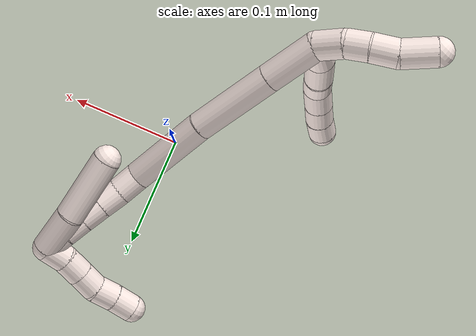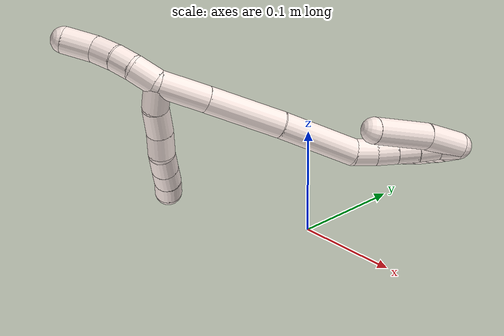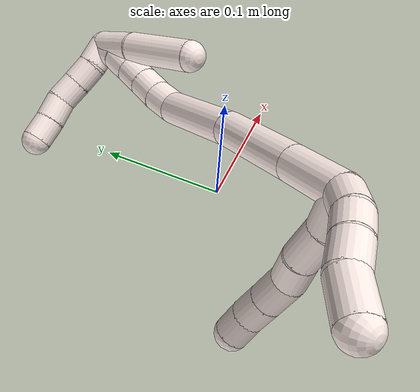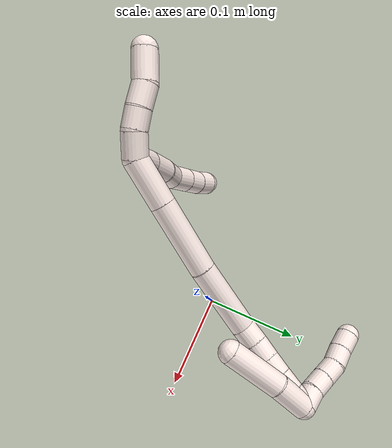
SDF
<sdf version="1.7">
 <world name="default">
  <model name="11">
   <static>0</static>
   <link name="11">
    <collision name="collision-cylinder-e_1_2_8">
     <pose>-0.013148 -0.002864 -0.005314 2.64728 -1.1404 -2.39186</pose>
     <geometry><cylinder><radius>0.0125</radius><length>0.028936</length></cylinder></geometry>
     <surface>
      <friction><ode><mu>1.16</mu><mu2>1.16</mu2><slip1>0</slip1><slip2>0</slip2></ode></friction>
      <contact><ode><kp>1e+06</kp><kd>1</kd><max_vel>0</max_vel><min_depth>0.001</min_depth></ode></contact>
     </surface>
    </collision>
    <visual name="visual-cylinder-e_1_2_8">
     <pose>-0.013148 -0.002864 -0.005314 2.64728 -1.1404 -2.39186</pose>
     <geometry><cylinder><radius>0.0125</radius><length>0.028936</length></cylinder></geometry>
     <material><ambient>1 0.933333 0.909804 1</ambient></material>
    </visual>
    <collision name="collision-cylinder-e_2_8_9">
     <pose>-0.039009 -0.008166 -0.019204 2.86464 -0.959155 -2.61794</pose>
     <geometry><cylinder><radius>0.0125</radius><length>0.031055</length></cylinder></geometry>
     <surface>
      <friction><ode><mu>1.16</mu><mu2>1.16</mu2><slip1>0</slip1><slip2>0</slip2></ode></friction>
      <contact><ode><kp>1e+06</kp><kd>1</kd><max_vel>0</max_vel><min_depth>0.001</min_depth></ode></contact>
     </surface>
    </collision>
    <visual name="visual-cylinder-e_2_8_9">
     <pose>-0.039009 -0.008166 -0.019204 2.86464 -0.959155 -2.61794</pose>
     <geometry><cylinder><radius>0.0125</radius><length>0.031055</length></cylinder></geometry>
     <material><ambient>1 0.933333 0.909804 1</ambient></material>
    </visual>
    <collision name="collision-cylinder-e_3_9_10">
     <pose>-0.061872 -0.01428 -0.03355 2.57425 -0.977741 -2.1389</pose>
     <geometry><cylinder><radius>0.0125</radius><length>0.02448</length></cylinder></geometry>
     <surface>
      <friction><ode><mu>1.16</mu><mu2>1.16</mu2><slip1>0</slip1><slip2>0</slip2></ode></friction>
      <contact><ode><kp>1e+06</kp><kd>1</kd><max_vel>0</max_vel><min_depth>0.001</min_depth></ode></contact>
     </surface>
    </collision>
    <visual name="visual-cylinder-e_3_9_10">
     <pose>-0.061872 -0.01428 -0.03355 2.57425 -0.977741 -2.1389</pose>
     <geometry><cylinder><radius>0.0125</radius><length>0.02448</length></cylinder></geometry>
     <material><ambient>1 0.933333 0.909804 1</ambient></material>
    </visual>
    <collision name="collision-cylinder-e_4_10_11">
     <pose>-0.082232 -0.017599 -0.046178 -3.08956 -0.978652 3.04394</pose>
     <geometry><cylinder><radius>0.0125</radius><length>0.024611</length></cylinder></geometry>
     <surface>
      <friction><ode><mu>1.16</mu><mu2>1.16</mu2><slip1>0</slip1><slip2>0</slip2></ode></friction>
      <contact><ode><kp>1e+06</kp><kd>1</kd><max_vel>0</max_vel><min_depth>0.001</min_depth></ode></contact>
     </surface>
    </collision>
    <visual name="visual-cylinder-e_4_10_11">
     <pose>-0.082232 -0.017599 -0.046178 -3.08956 -0.978652 3.04394</pose>
     <geometry><cylinder><radius>0.0125</radius><length>0.024611</length></cylinder></geometry>
     <material><ambient>1 0.933333 0.909804 1</ambient></material>
    </visual>
    <collision name="collision-cylinder-e_5_11_12">
     <pose>-0.101006 -0.016866 -0.05892 -3.07777 -0.967882 3.02029</pose>
     <geometry><cylinder><radius>0.0125</radius><length>0.020791</length></cylinder></geometry>
     <surface>
      <friction><ode><mu>1.16</mu><mu2>1.16</mu2><slip1>0</slip1><slip2>0</slip2></ode></friction>
      <contact><ode><kp>1e+06</kp><kd>1</kd><max_vel>0</max_vel><min_depth>0.001</min_depth></ode></contact>
     </surface>
    </collision>
    <visual name="visual-cylinder-e_5_11_12">
     <pose>-0.101006 -0.016866 -0.05892 -3.07777 -0.967882 3.02029</pose>
     <geometry><cylinder><radius>0.0125</radius><length>0.020791</length></cylinder></geometry>
     <material><ambient>1 0.933333 0.909804 1</ambient></material>
    </visual>
    <collision name="collision-cylinder-e_6_12_6">
     <pose>-0.1183 -0.015762 -0.069753 -2.99556 -1.05045 2.89047</pose>
     <geometry><cylinder><radius>0.0125</radius><length>0.020126</length></cylinder></geometry>
     <surface>
      <friction><ode><mu>1.16</mu><mu2>1.16</mu2><slip1>0</slip1><slip2>0</slip2></ode></friction>
      <contact><ode><kp>1e+06</kp><kd>1</kd><max_vel>0</max_vel><min_depth>0.001</min_depth></ode></contact>
     </surface>
    </collision>
    <visual name="visual-cylinder-e_6_12_6">
     <pose>-0.1183 -0.015762 -0.069753 -2.99556 -1.05045 2.89047</pose>
     <geometry><cylinder><radius>0.0125</radius><length>0.020126</length></cylinder></geometry>
     <material><ambient>1 0.933333 0.909804 1</ambient></material>
    </visual>
    <collision name="collision-cylinder-e_1_2_13">
     <pose>-0.002405 0.007447 0.010081 -0.63624 -0.189579 0.062596</pose>
     <geometry><cylinder><radius>0.0125</radius><length>0.025523</length></cylinder></geometry>
     <surface>
      <friction><ode><mu>1.16</mu><mu2>1.16</mu2><slip1>0</slip1><slip2>0</slip2></ode></friction>
      <contact><ode><kp>1e+06</kp><kd>1</kd><max_vel>0</max_vel><min_depth>0.001</min_depth></ode></contact>
     </surface>
    </collision>
    <visual name="visual-cylinder-e_1_2_13">
     <pose>-0.002405 0.007447 0.010081 -0.63624 -0.189579 0.062596</pose>
     <geometry><cylinder><radius>0.0125</radius><length>0.025523</length></cylinder></geometry>
     <material><ambient>1 0.933333 0.909804 1</ambient></material>
    </visual>
    <collision name="collision-cylinder-e_2_13_14">
     <pose>-0.008908 0.021617 0.026519 -0.813328 -0.416931 0.181705</pose>
     <geometry><cylinder><radius>0.0125</radius><length>0.020242</length></cylinder></geometry>
     <surface>
      <friction><ode><mu>1.16</mu><mu2>1.16</mu2><slip1>0</slip1><slip2>0</slip2></ode></friction>
      <contact><ode><kp>1e+06</kp><kd>1</kd><max_vel>0</max_vel><min_depth>0.001</min_depth></ode></contact>
     </surface>
    </collision>
    <visual name="visual-cylinder-e_2_13_14">
     <pose>-0.008908 0.021617 0.026519 -0.813328 -0.416931 0.181705</pose>
     <geometry><cylinder><radius>0.0125</radius><length>0.020242</length></cylinder></geometry>
     <material><ambient>1 0.933333 0.909804 1</ambient></material>
    </visual>
    <collision name="collision-cylinder-e_3_14_15">
     <pose>-0.019056 0.035721 0.039387 -0.848037 -0.551117 0.253896</pose>
     <geometry><cylinder><radius>0.0125</radius><length>0.023103</length></cylinder></geometry>
     <surface>
      <friction><ode><mu>1.16</mu><mu2>1.16</mu2><slip1>0</slip1><slip2>0</slip2></ode></friction>
      <contact><ode><kp>1e+06</kp><kd>1</kd><max_vel>0</max_vel><min_depth>0.001</min_depth></ode></contact>
     </surface>
    </collision>
    <visual name="visual-cylinder-e_3_14_15">
     <pose>-0.019056 0.035721 0.039387 -0.848037 -0.551117 0.253896</pose>
     <geometry><cylinder><radius>0.0125</radius><length>0.023103</length></cylinder></geometry>
     <material><ambient>1 0.933333 0.909804 1</ambient></material>
    </visual>
    <collision name="collision-cylinder-e_4_15_5">
     <pose>-0.032341 0.050242 0.057685 -0.544594 -0.483502 0.137486</pose>
     <geometry><cylinder><radius>0.0125</radius><length>0.031132</length></cylinder></geometry>
     <surface>
      <friction><ode><mu>1.16</mu><mu2>1.16</mu2><slip1>0</slip1><slip2>0</slip2></ode></friction>
      <contact><ode><kp>1e+06</kp><kd>1</kd><max_vel>0</max_vel><min_depth>0.001</min_depth></ode></contact>
     </surface>
    </collision>
    <visual name="visual-cylinder-e_4_15_5">
     <pose>-0.032341 0.050242 0.057685 -0.544594 -0.483502 0.137486</pose>
     <geometry><cylinder><radius>0.0125</radius><length>0.031132</length></cylinder></geometry>
     <material><ambient>1 0.933333 0.909804 1</ambient></material>
    </visual>
    <collision name="collision-cylinder-e_1_2_16">
     <pose>0.001243 -0.003356 -0.023659 3.00069 0.051952 0.705558</pose>
     <geometry><cylinder><radius>0.0125</radius><length>0.047857</length></cylinder></geometry>
     <surface>
      <friction><ode><mu>1.16</mu><mu2>1.16</mu2><slip1>0</slip1><slip2>0</slip2></ode></friction>
      <contact><ode><kp>1e+06</kp><kd>1</kd><max_vel>0</max_vel><min_depth>0.001</min_depth></ode></contact>
     </surface>
    </collision>
    <visual name="visual-cylinder-e_1_2_16">
     <pose>0.001243 -0.003356 -0.023659 3.00069 0.051952 0.705558</pose>
     <geometry><cylinder><radius>0.0125</radius><length>0.047857</length></cylinder></geometry>
     <material><ambient>1 0.933333 0.909804 1</ambient></material>
    </visual>
    <collision name="collision-cylinder-e_2_16_17">
     <pose>0.003851 -0.012035 -0.084178 2.99818 0.036655 0.499691</pose>
     <geometry><cylinder><radius>0.0125</radius><length>0.074533</length></cylinder></geometry>
     <surface>
      <friction><ode><mu>1.16</mu><mu2>1.16</mu2><slip1>0</slip1><slip2>0</slip2></ode></friction>
      <contact><ode><kp>1e+06</kp><kd>1</kd><max_vel>0</max_vel><min_depth>0.001</min_depth></ode></contact>
     </surface>
    </collision>
    <visual name="visual-cylinder-e_2_16_17">
     <pose>0.003851 -0.012035 -0.084178 2.99818 0.036655 0.499691</pose>
     <geometry><cylinder><radius>0.0125</radius><length>0.074533</length></cylinder></geometry>
     <material><ambient>1 0.933333 0.909804 1</ambient></material>
    </visual>
    <collision name="collision-cylinder-e_3_17_18">
     <pose>0.003787 -0.021797 -0.158786 3.02451 -0.037582 -0.620619</pose>
     <geometry><cylinder><radius>0.0125</radius><length>0.076073</length></cylinder></geometry>
     <surface>
      <friction><ode><mu>1.16</mu><mu2>1.16</mu2><slip1>0</slip1><slip2>0</slip2></ode></friction>
      <contact><ode><kp>1e+06</kp><kd>1</kd><max_vel>0</max_vel><min_depth>0.001</min_depth></ode></contact>
     </surface>
    </collision>
    <visual name="visual-cylinder-e_3_17_18">
     <pose>0.003787 -0.021797 -0.158786 3.02451 -0.037582 -0.620619</pose>
     <geometry><cylinder><radius>0.0125</radius><length>0.076073</length></cylinder></geometry>
     <material><ambient>1 0.933333 0.909804 1</ambient></material>
    </visual>
    <collision name="collision-cylinder-e_4_18_19">
     <pose>0.004836 -0.025259 -0.206778 -3.04638 0.236297 -2.37826</pose>
     <geometry><cylinder><radius>0.0125</radius><length>0.021167</length></cylinder></geometry>
     <surface>
      <friction><ode><mu>1.16</mu><mu2>1.16</mu2><slip1>0</slip1><slip2>0</slip2></ode></friction>
      <contact><ode><kp>1e+06</kp><kd>1</kd><max_vel>0</max_vel><min_depth>0.001</min_depth></ode></contact>
     </surface>
    </collision>
    <visual name="visual-cylinder-e_4_18_19">
     <pose>0.004836 -0.025259 -0.206778 -3.04638 0.236297 -2.37826</pose>
     <geometry><cylinder><radius>0.0125</radius><length>0.021167</length></cylinder></geometry>
     <material><ambient>1 0.933333 0.909804 1</ambient></material>
    </visual>
    <collision name="collision-cylinder-e_5_19_20">
     <pose>0.010764 -0.023284 -0.226456 -3.03629 0.348827 -2.56035</pose>
     <geometry><cylinder><radius>0.0125</radius><length>0.020192</length></cylinder></geometry>
     <surface>
      <friction><ode><mu>1.16</mu><mu2>1.16</mu2><slip1>0</slip1><slip2>0</slip2></ode></friction>
      <contact><ode><kp>1e+06</kp><kd>1</kd><max_vel>0</max_vel><min_depth>0.001</min_depth></ode></contact>
     </surface>
    </collision>
    <visual name="visual-cylinder-e_5_19_20">
     <pose>0.010764 -0.023284 -0.226456 -3.03629 0.348827 -2.56035</pose>
     <geometry><cylinder><radius>0.0125</radius><length>0.020192</length></cylinder></geometry>
     <material><ambient>1 0.933333 0.909804 1</ambient></material>
    </visual>
    <collision name="collision-cylinder-e_6_20_21">
     <pose>0.017627 -0.021146 -0.245296 -3.02094 0.345655 -2.47539</pose>
     <geometry><cylinder><radius>0.0125</radius><length>0.020138</length></cylinder></geometry>
     <surface>
      <friction><ode><mu>1.16</mu><mu2>1.16</mu2><slip1>0</slip1><slip2>0</slip2></ode></friction>
      <contact><ode><kp>1e+06</kp><kd>1</kd><max_vel>0</max_vel><min_depth>0.001</min_depth></ode></contact>
     </surface>
    </collision>
    <visual name="visual-cylinder-e_6_20_21">
     <pose>0.017627 -0.021146 -0.245296 -3.02094 0.345655 -2.47539</pose>
     <geometry><cylinder><radius>0.0125</radius><length>0.020138</length></cylinder></geometry>
     <material><ambient>1 0.933333 0.909804 1</ambient></material>
    </visual>
    <collision name="collision-cylinder-e_7_21_22">
     <pose>0.024654 -0.01844 -0.263898 -2.97294 0.36974 -2.29256</pose>
     <geometry><cylinder><radius>0.0125</radius><length>0.020012</length></cylinder></geometry>
     <surface>
      <friction><ode><mu>1.16</mu><mu2>1.16</mu2><slip1>0</slip1><slip2>0</slip2></ode></friction>
      <contact><ode><kp>1e+06</kp><kd>1</kd><max_vel>0</max_vel><min_depth>0.001</min_depth></ode></contact>
     </surface>
    </collision>
    <visual name="visual-cylinder-e_7_21_22">
     <pose>0.024654 -0.01844 -0.263898 -2.97294 0.36974 -2.29256</pose>
     <geometry><cylinder><radius>0.0125</radius><length>0.020012</length></cylinder></geometry>
     <material><ambient>1 0.933333 0.909804 1</ambient></material>
    </visual>
    <collision name="collision-cylinder-e_8_22_1">
     <pose>0.030719 -0.015877 -0.282755 -3.0388 0.24702 -2.35591</pose>
     <geometry><cylinder><radius>0.0125</radius><length>0.020029</length></cylinder></geometry>
     <surface>
      <friction><ode><mu>1.16</mu><mu2>1.16</mu2><slip1>0</slip1><slip2>0</slip2></ode></friction>
      <contact><ode><kp>1e+06</kp><kd>1</kd><max_vel>0</max_vel><min_depth>0.001</min_depth></ode></contact>
     </surface>
    </collision>
    <visual name="visual-cylinder-e_8_22_1">
     <pose>0.030719 -0.015877 -0.282755 -3.0388 0.24702 -2.35591</pose>
     <geometry><cylinder><radius>0.0125</radius><length>0.020029</length></cylinder></geometry>
     <material><ambient>1 0.933333 0.909804 1</ambient></material>
    </visual>
    <collision name="collision-cylinder-e_1_1_23">
     <pose>0.024384 -0.01011 -0.292104 -1.50601 -1.07228 1.01624</pose>
     <geometry><cylinder><radius>0.0125</radius><length>0.02</length></cylinder></geometry>
     <surface>
      <friction><ode><mu>1.16</mu><mu2>1.16</mu2><slip1>0</slip1><slip2>0</slip2></ode></friction>
      <contact><ode><kp>1e+06</kp><kd>1</kd><max_vel>0</max_vel><min_depth>0.001</min_depth></ode></contact>
     </surface>
    </collision>
    <visual name="visual-cylinder-e_1_1_23">
     <pose>0.024384 -0.01011 -0.292104 -1.50601 -1.07228 1.01624</pose>
     <geometry><cylinder><radius>0.0125</radius><length>0.02</length></cylinder></geometry>
     <material><ambient>1 0.933333 0.909804 1</ambient></material>
    </visual>
    <collision name="collision-cylinder-e_2_23_24">
     <pose>0.007244 -4.6e-05 -0.293256 -1.84016 -0.989557 1.23306</pose>
     <geometry><cylinder><radius>0.0125</radius><length>0.02</length></cylinder></geometry>
     <surface>
      <friction><ode><mu>1.16</mu><mu2>1.16</mu2><slip1>0</slip1><slip2>0</slip2></ode></friction>
      <contact><ode><kp>1e+06</kp><kd>1</kd><max_vel>0</max_vel><min_depth>0.001</min_depth></ode></contact>
     </surface>
    </collision>
    <visual name="visual-cylinder-e_2_23_24">
     <pose>0.007244 -4.6e-05 -0.293256 -1.84016 -0.989557 1.23306</pose>
     <geometry><cylinder><radius>0.0125</radius><length>0.02</length></cylinder></geometry>
     <material><ambient>1 0.933333 0.909804 1</ambient></material>
    </visual>
    <collision name="collision-cylinder-e_3_24_25">
     <pose>-0.009259 0.010886 -0.296084 -1.80855 -0.951789 1.16008</pose>
     <geometry><cylinder><radius>0.0125</radius><length>0.02</length></cylinder></geometry>
     <surface>
      <friction><ode><mu>1.16</mu><mu2>1.16</mu2><slip1>0</slip1><slip2>0</slip2></ode></friction>
      <contact><ode><kp>1e+06</kp><kd>1</kd><max_vel>0</max_vel><min_depth>0.001</min_depth></ode></contact>
     </surface>
    </collision>
    <visual name="visual-cylinder-e_3_24_25">
     <pose>-0.009259 0.010886 -0.296084 -1.80855 -0.951789 1.16008</pose>
     <geometry><cylinder><radius>0.0125</radius><length>0.02</length></cylinder></geometry>
     <material><ambient>1 0.933333 0.909804 1</ambient></material>
    </visual>
    <collision name="collision-cylinder-e_4_25_26">
     <pose>-0.026148 0.021198 -0.296149 -1.29915 -1.06433 0.841103</pose>
     <geometry><cylinder><radius>0.0125</radius><length>0.02</length></cylinder></geometry>
     <surface>
      <friction><ode><mu>1.16</mu><mu2>1.16</mu2><slip1>0</slip1><slip2>0</slip2></ode></friction>
      <contact><ode><kp>1e+06</kp><kd>1</kd><max_vel>0</max_vel><min_depth>0.001</min_depth></ode></contact>
     </surface>
    </collision>
    <visual name="visual-cylinder-e_4_25_26">
     <pose>-0.026148 0.021198 -0.296149 -1.29915 -1.06433 0.841103</pose>
     <geometry><cylinder><radius>0.0125</radius><length>0.02</length></cylinder></geometry>
     <material><ambient>1 0.933333 0.909804 1</ambient></material>
    </visual>
    <collision name="collision-cylinder-e_5_26_4">
     <pose>-0.043226 0.031308 -0.293852 -1.38982 -0.98517 0.841409</pose>
     <geometry><cylinder><radius>0.0125</radius><length>0.02</length></cylinder></geometry>
     <surface>
      <friction><ode><mu>1.16</mu><mu2>1.16</mu2><slip1>0</slip1><slip2>0</slip2></ode></friction>
      <contact><ode><kp>1e+06</kp><kd>1</kd><max_vel>0</max_vel><min_depth>0.001</min_depth></ode></contact>
     </surface>
    </collision>
    <visual name="visual-cylinder-e_5_26_4">
     <pose>-0.043226 0.031308 -0.293852 -1.38982 -0.98517 0.841409</pose>
     <geometry><cylinder><radius>0.0125</radius><length>0.02</length></cylinder></geometry>
     <material><ambient>1 0.933333 0.909804 1</ambient></material>
    </visual>
    <collision name="collision-cylinder-e_1_1_27">
     <pose>0.035998 -0.01652 -0.273005 0.08425 0.14432 0.006094</pose>
     <geometry><cylinder><radius>0.0125</radius><length>0.039365</length></cylinder></geometry>
     <surface>
      <friction><ode><mu>1.16</mu><mu2>1.16</mu2><slip1>0</slip1><slip2>0</slip2></ode></friction>
      <contact><ode><kp>1e+06</kp><kd>1</kd><max_vel>0</max_vel><min_depth>0.001</min_depth></ode></contact>
     </surface>
    </collision>
    <visual name="visual-cylinder-e_1_1_27">
     <pose>0.035998 -0.01652 -0.273005 0.08425 0.14432 0.006094</pose>
     <geometry><cylinder><radius>0.0125</radius><length>0.039365</length></cylinder></geometry>
     <material><ambient>1 0.933333 0.909804 1</ambient></material>
    </visual>
    <collision name="collision-cylinder-e_2_27_3">
     <pose>0.041208 -0.024418 -0.224028 0.208599 0.078562 0.008228</pose>
     <geometry><cylinder><radius>0.0125</radius><length>0.060635</length></cylinder></geometry>
     <surface>
      <friction><ode><mu>1.16</mu><mu2>1.16</mu2><slip1>0</slip1><slip2>0</slip2></ode></friction>
      <contact><ode><kp>1e+06</kp><kd>1</kd><max_vel>0</max_vel><min_depth>0.001</min_depth></ode></contact>
     </surface>
    </collision>
    <visual name="visual-cylinder-e_2_27_3">
     <pose>0.041208 -0.024418 -0.224028 0.208599 0.078562 0.008228</pose>
     <geometry><cylinder><radius>0.0125</radius><length>0.060635</length></cylinder></geometry>
     <material><ambient>1 0.933333 0.909804 1</ambient></material>
    </visual>
    <collision name="collision-sphere-3">
     <pose>0.043587 -0.030677 -0.194459 0 -0 0</pose>
     <geometry><sphere><radius>0.0125</radius></sphere></geometry>
     <surface>
      <friction><ode><mu>1.16</mu><mu2>1.16</mu2><slip1>0</slip1><slip2>0</slip2></ode></friction>
      <contact><ode><kp>1e+06</kp><kd>1</kd><max_vel>0</max_vel><min_depth>0.001</min_depth></ode></contact>
     </surface>
    </collision>
    <visual name="visual-sphere-3">
     <pose>0.043587 -0.030677 -0.194459 0 -0 0</pose>
     <geometry><sphere><radius>0.0125</radius></sphere></geometry>
     <material><ambient>1 0.933333 0.909804 1</ambient></material>
    </visual>
    <collision name="collision-sphere-27">
     <pose>0.038829 -0.018159 -0.253597 0 -0 0</pose>
     <geometry><sphere><radius>0.0125</radius></sphere></geometry>
     <surface>
      <friction><ode><mu>1.16</mu><mu2>1.16</mu2><slip1>0</slip1><slip2>0</slip2></ode></friction>
      <contact><ode><kp>1e+06</kp><kd>1</kd><max_vel>0</max_vel><min_depth>0.001</min_depth></ode></contact>
     </surface>
    </collision>
    <visual name="visual-sphere-27">
     <pose>0.038829 -0.018159 -0.253597 0 -0 0</pose>
     <geometry><sphere><radius>0.0125</radius></sphere></geometry>
     <material><ambient>1 0.933333 0.909804 1</ambient></material>
    </visual>
    <collision name="collision-sphere-4">
     <pose>-0.05156 0.036745 -0.292857 0 -0 0</pose>
     <geometry><sphere><radius>0.0125</radius></sphere></geometry>
     <surface>
      <friction><ode><mu>1.16</mu><mu2>1.16</mu2><slip1>0</slip1><slip2>0</slip2></ode></friction>
      <contact><ode><kp>1e+06</kp><kd>1</kd><max_vel>0</max_vel><min_depth>0.001</min_depth></ode></contact>
     </surface>
    </collision>
    <visual name="visual-sphere-4">
     <pose>-0.05156 0.036745 -0.292857 0 -0 0</pose>
     <geometry><sphere><radius>0.0125</radius></sphere></geometry>
     <material><ambient>1 0.933333 0.909804 1</ambient></material>
    </visual>
    <collision name="collision-sphere-26">
     <pose>-0.034893 0.025871 -0.294847 0 -0 0</pose>
     <geometry><sphere><radius>0.0125</radius></sphere></geometry>
     <surface>
      <friction><ode><mu>1.16</mu><mu2>1.16</mu2><slip1>0</slip1><slip2>0</slip2></ode></friction>
      <contact><ode><kp>1e+06</kp><kd>1</kd><max_vel>0</max_vel><min_depth>0.001</min_depth></ode></contact>
     </surface>
    </collision>
    <visual name="visual-sphere-26">
     <pose>-0.034893 0.025871 -0.294847 0 -0 0</pose>
     <geometry><sphere><radius>0.0125</radius></sphere></geometry>
     <material><ambient>1 0.933333 0.909804 1</ambient></material>
    </visual>
    <collision name="collision-sphere-25">
     <pose>-0.017403 0.016525 -0.29745 0 -0 0</pose>
     <geometry><sphere><radius>0.0125</radius></sphere></geometry>
     <surface>
      <friction><ode><mu>1.16</mu><mu2>1.16</mu2><slip1>0</slip1><slip2>0</slip2></ode></friction>
      <contact><ode><kp>1e+06</kp><kd>1</kd><max_vel>0</max_vel><min_depth>0.001</min_depth></ode></contact>
     </surface>
    </collision>
    <visual name="visual-sphere-25">
     <pose>-0.017403 0.016525 -0.29745 0 -0 0</pose>
     <geometry><sphere><radius>0.0125</radius></sphere></geometry>
     <material><ambient>1 0.933333 0.909804 1</ambient></material>
    </visual>
    <collision name="collision-sphere-24">
     <pose>-0.001114 0.005247 -0.294717 0 -0 0</pose>
     <geometry><sphere><radius>0.0125</radius></sphere></geometry>
     <surface>
      <friction><ode><mu>1.16</mu><mu2>1.16</mu2><slip1>0</slip1><slip2>0</slip2></ode></friction>
      <contact><ode><kp>1e+06</kp><kd>1</kd><max_vel>0</max_vel><min_depth>0.001</min_depth></ode></contact>
     </surface>
    </collision>
    <visual name="visual-sphere-24">
     <pose>-0.001114 0.005247 -0.294717 0 -0 0</pose>
     <geometry><sphere><radius>0.0125</radius></sphere></geometry>
     <material><ambient>1 0.933333 0.909804 1</ambient></material>
    </visual>
    <collision name="collision-sphere-23">
     <pose>0.015601 -0.005338 -0.291795 0 -0 0</pose>
     <geometry><sphere><radius>0.0125</radius></sphere></geometry>
     <surface>
      <friction><ode><mu>1.16</mu><mu2>1.16</mu2><slip1>0</slip1><slip2>0</slip2></ode></friction>
      <contact><ode><kp>1e+06</kp><kd>1</kd><max_vel>0</max_vel><min_depth>0.001</min_depth></ode></contact>
     </surface>
    </collision>
    <visual name="visual-sphere-23">
     <pose>0.015601 -0.005338 -0.291795 0 -0 0</pose>
     <geometry><sphere><radius>0.0125</radius></sphere></geometry>
     <material><ambient>1 0.933333 0.909804 1</ambient></material>
    </visual>
    <collision name="collision-sphere-1">
     <pose>0.033167 -0.014881 -0.292414 0 -0 0</pose>
     <geometry><sphere><radius>0.0125</radius></sphere></geometry>
     <surface>
      <friction><ode><mu>1.16</mu><mu2>1.16</mu2><slip1>0</slip1><slip2>0</slip2></ode></friction>
      <contact><ode><kp>1e+06</kp><kd>1</kd><max_vel>0</max_vel><min_depth>0.001</min_depth></ode></contact>
     </surface>
    </collision>
    <visual name="visual-sphere-1">
     <pose>0.033167 -0.014881 -0.292414 0 -0 0</pose>
     <geometry><sphere><radius>0.0125</radius></sphere></geometry>
     <material><ambient>1 0.933333 0.909804 1</ambient></material>
    </visual>
    <collision name="collision-sphere-22">
     <pose>0.02827 -0.016874 -0.273096 0 -0 0</pose>
     <geometry><sphere><radius>0.0125</radius></sphere></geometry>
     <surface>
      <friction><ode><mu>1.16</mu><mu2>1.16</mu2><slip1>0</slip1><slip2>0</slip2></ode></friction>
      <contact><ode><kp>1e+06</kp><kd>1</kd><max_vel>0</max_vel><min_depth>0.001</min_depth></ode></contact>
     </surface>
    </collision>
    <visual name="visual-sphere-22">
     <pose>0.02827 -0.016874 -0.273096 0 -0 0</pose>
     <geometry><sphere><radius>0.0125</radius></sphere></geometry>
     <material><ambient>1 0.933333 0.909804 1</ambient></material>
    </visual>
    <collision name="collision-sphere-21">
     <pose>0.021038 -0.020006 -0.254701 0 -0 0</pose>
     <geometry><sphere><radius>0.0125</radius></sphere></geometry>
     <surface>
      <friction><ode><mu>1.16</mu><mu2>1.16</mu2><slip1>0</slip1><slip2>0</slip2></ode></friction>
      <contact><ode><kp>1e+06</kp><kd>1</kd><max_vel>0</max_vel><min_depth>0.001</min_depth></ode></contact>
     </surface>
    </collision>
    <visual name="visual-sphere-21">
     <pose>0.021038 -0.020006 -0.254701 0 -0 0</pose>
     <geometry><sphere><radius>0.0125</radius></sphere></geometry>
     <material><ambient>1 0.933333 0.909804 1</ambient></material>
    </visual>
    <collision name="collision-sphere-12">
     <pose>-0.109569 -0.01649 -0.064803 0 -0 0</pose>
     <geometry><sphere><radius>0.0125</radius></sphere></geometry>
     <surface>
      <friction><ode><mu>1.16</mu><mu2>1.16</mu2><slip1>0</slip1><slip2>0</slip2></ode></friction>
      <contact><ode><kp>1e+06</kp><kd>1</kd><max_vel>0</max_vel><min_depth>0.001</min_depth></ode></contact>
     </surface>
    </collision>
    <visual name="visual-sphere-12">
     <pose>-0.109569 -0.01649 -0.064803 0 -0 0</pose>
     <geometry><sphere><radius>0.0125</radius></sphere></geometry>
     <material><ambient>1 0.933333 0.909804 1</ambient></material>
    </visual>
    <collision name="collision-sphere-11">
     <pose>-0.092443 -0.017242 -0.053037 0 -0 0</pose>
     <geometry><sphere><radius>0.0125</radius></sphere></geometry>
     <surface>
      <friction><ode><mu>1.16</mu><mu2>1.16</mu2><slip1>0</slip1><slip2>0</slip2></ode></friction>
      <contact><ode><kp>1e+06</kp><kd>1</kd><max_vel>0</max_vel><min_depth>0.001</min_depth></ode></contact>
     </surface>
    </collision>
    <visual name="visual-sphere-11">
     <pose>-0.092443 -0.017242 -0.053037 0 -0 0</pose>
     <geometry><sphere><radius>0.0125</radius></sphere></geometry>
     <material><ambient>1 0.933333 0.909804 1</ambient></material>
    </visual>
    <collision name="collision-sphere-10">
     <pose>-0.072022 -0.017956 -0.039319 0 -0 0</pose>
     <geometry><sphere><radius>0.0125</radius></sphere></geometry>
     <surface>
      <friction><ode><mu>1.16</mu><mu2>1.16</mu2><slip1>0</slip1><slip2>0</slip2></ode></friction>
      <contact><ode><kp>1e+06</kp><kd>1</kd><max_vel>0</max_vel><min_depth>0.001</min_depth></ode></contact>
     </surface>
    </collision>
    <visual name="visual-sphere-10">
     <pose>-0.072022 -0.017956 -0.039319 0 -0 0</pose>
     <geometry><sphere><radius>0.0125</radius></sphere></geometry>
     <material><ambient>1 0.933333 0.909804 1</ambient></material>
    </visual>
    <collision name="collision-sphere-9">
     <pose>-0.051722 -0.010603 -0.02778 0 -0 0</pose>
     <geometry><sphere><radius>0.0125</radius></sphere></geometry>
     <surface>
      <friction><ode><mu>1.16</mu><mu2>1.16</mu2><slip1>0</slip1><slip2>0</slip2></ode></friction>
      <contact><ode><kp>1e+06</kp><kd>1</kd><max_vel>0</max_vel><min_depth>0.001</min_depth></ode></contact>
     </surface>
    </collision>
    <visual name="visual-sphere-9">
     <pose>-0.051722 -0.010603 -0.02778 0 -0 0</pose>
     <geometry><sphere><radius>0.0125</radius></sphere></geometry>
     <material><ambient>1 0.933333 0.909804 1</ambient></material>
    </visual>
    <collision name="collision-sphere-2">
     <geometry><sphere><radius>0.0125</radius></sphere></geometry>
     <surface>
      <friction><ode><mu>1.16</mu><mu2>1.16</mu2><slip1>0</slip1><slip2>0</slip2></ode></friction>
      <contact><ode><kp>1e+06</kp><kd>1</kd><max_vel>0</max_vel><min_depth>0.001</min_depth></ode></contact>
     </surface>
    </collision>
    <visual name="visual-sphere-2">
     <geometry><sphere><radius>0.0125</radius></sphere></geometry>
     <material><ambient>1 0.933333 0.909804 1</ambient></material>
    </visual>
    <collision name="collision-sphere-19">
     <pose>0.007314 -0.024281 -0.217021 0 -0 0</pose>
     <geometry><sphere><radius>0.0125</radius></sphere></geometry>
     <surface>
      <friction><ode><mu>1.16</mu><mu2>1.16</mu2><slip1>0</slip1><slip2>0</slip2></ode></friction>
      <contact><ode><kp>1e+06</kp><kd>1</kd><max_vel>0</max_vel><min_depth>0.001</min_depth></ode></contact>
     </surface>
    </collision>
    <visual name="visual-sphere-19">
     <pose>0.007314 -0.024281 -0.217021 0 -0 0</pose>
     <geometry><sphere><radius>0.0125</radius></sphere></geometry>
     <material><ambient>1 0.933333 0.909804 1</ambient></material>
    </visual>
    <collision name="collision-sphere-8">
     <pose>-0.026297 -0.005728 -0.010628 0 -0 0</pose>
     <geometry><sphere><radius>0.0125</radius></sphere></geometry>
     <surface>
      <friction><ode><mu>1.16</mu><mu2>1.16</mu2><slip1>0</slip1><slip2>0</slip2></ode></friction>
      <contact><ode><kp>1e+06</kp><kd>1</kd><max_vel>0</max_vel><min_depth>0.001</min_depth></ode></contact>
     </surface>
    </collision>
    <visual name="visual-sphere-8">
     <pose>-0.026297 -0.005728 -0.010628 0 -0 0</pose>
     <geometry><sphere><radius>0.0125</radius></sphere></geometry>
     <material><ambient>1 0.933333 0.909804 1</ambient></material>
    </visual>
    <collision name="collision-sphere-6">
     <pose>-0.127031 -0.015034 -0.074702 0 -0 0</pose>
     <geometry><sphere><radius>0.0125</radius></sphere></geometry>
     <surface>
      <friction><ode><mu>1.16</mu><mu2>1.16</mu2><slip1>0</slip1><slip2>0</slip2></ode></friction>
      <contact><ode><kp>1e+06</kp><kd>1</kd><max_vel>0</max_vel><min_depth>0.001</min_depth></ode></contact>
     </surface>
    </collision>
    <visual name="visual-sphere-6">
     <pose>-0.127031 -0.015034 -0.074702 0 -0 0</pose>
     <geometry><sphere><radius>0.0125</radius></sphere></geometry>
     <material><ambient>1 0.933333 0.909804 1</ambient></material>
    </visual>
    <collision name="collision-sphere-13">
     <pose>-0.00481 0.014893 0.020161 0 -0 0</pose>
     <geometry><sphere><radius>0.0125</radius></sphere></geometry>
     <surface>
      <friction><ode><mu>1.16</mu><mu2>1.16</mu2><slip1>0</slip1><slip2>0</slip2></ode></friction>
      <contact><ode><kp>1e+06</kp><kd>1</kd><max_vel>0</max_vel><min_depth>0.001</min_depth></ode></contact>
     </surface>
    </collision>
    <visual name="visual-sphere-13">
     <pose>-0.00481 0.014893 0.020161 0 -0 0</pose>
     <geometry><sphere><radius>0.0125</radius></sphere></geometry>
     <material><ambient>1 0.933333 0.909804 1</ambient></material>
    </visual>
    <collision name="collision-sphere-14">
     <pose>-0.013007 0.028341 0.032877 0 -0 0</pose>
     <geometry><sphere><radius>0.0125</radius></sphere></geometry>
     <surface>
      <friction><ode><mu>1.16</mu><mu2>1.16</mu2><slip1>0</slip1><slip2>0</slip2></ode></friction>
      <contact><ode><kp>1e+06</kp><kd>1</kd><max_vel>0</max_vel><min_depth>0.001</min_depth></ode></contact>
     </surface>
    </collision>
    <visual name="visual-sphere-14">
     <pose>-0.013007 0.028341 0.032877 0 -0 0</pose>
     <geometry><sphere><radius>0.0125</radius></sphere></geometry>
     <material><ambient>1 0.933333 0.909804 1</ambient></material>
    </visual>
    <collision name="collision-sphere-15">
     <pose>-0.025104 0.043102 0.045897 0 -0 0</pose>
     <geometry><sphere><radius>0.0125</radius></sphere></geometry>
     <surface>
      <friction><ode><mu>1.16</mu><mu2>1.16</mu2><slip1>0</slip1><slip2>0</slip2></ode></friction>
      <contact><ode><kp>1e+06</kp><kd>1</kd><max_vel>0</max_vel><min_depth>0.001</min_depth></ode></contact>
     </surface>
    </collision>
    <visual name="visual-sphere-15">
     <pose>-0.025104 0.043102 0.045897 0 -0 0</pose>
     <geometry><sphere><radius>0.0125</radius></sphere></geometry>
     <material><ambient>1 0.933333 0.909804 1</ambient></material>
    </visual>
    <collision name="collision-sphere-5">
     <pose>-0.039577 0.057382 0.069473 0 -0 0</pose>
     <geometry><sphere><radius>0.0125</radius></sphere></geometry>
     <surface>
      <friction><ode><mu>1.16</mu><mu2>1.16</mu2><slip1>0</slip1><slip2>0</slip2></ode></friction>
      <contact><ode><kp>1e+06</kp><kd>1</kd><max_vel>0</max_vel><min_depth>0.001</min_depth></ode></contact>
     </surface>
    </collision>
    <visual name="visual-sphere-5">
     <pose>-0.039577 0.057382 0.069473 0 -0 0</pose>
     <geometry><sphere><radius>0.0125</radius></sphere></geometry>
     <material><ambient>1 0.933333 0.909804 1</ambient></material>
    </visual>
    <collision name="collision-sphere-16">
     <pose>0.002485 -0.006712 -0.047318 0 -0 0</pose>
     <geometry><sphere><radius>0.0125</radius></sphere></geometry>
     <surface>
      <friction><ode><mu>1.16</mu><mu2>1.16</mu2><slip1>0</slip1><slip2>0</slip2></ode></friction>
      <contact><ode><kp>1e+06</kp><kd>1</kd><max_vel>0</max_vel><min_depth>0.001</min_depth></ode></contact>
     </surface>
    </collision>
    <visual name="visual-sphere-16">
     <pose>0.002485 -0.006712 -0.047318 0 -0 0</pose>
     <geometry><sphere><radius>0.0125</radius></sphere></geometry>
     <material><ambient>1 0.933333 0.909804 1</ambient></material>
    </visual>
    <collision name="collision-sphere-17">
     <pose>0.005217 -0.017357 -0.121037 0 -0 0</pose>
     <geometry><sphere><radius>0.0125</radius></sphere></geometry>
     <surface>
      <friction><ode><mu>1.16</mu><mu2>1.16</mu2><slip1>0</slip1><slip2>0</slip2></ode></friction>
      <contact><ode><kp>1e+06</kp><kd>1</kd><max_vel>0</max_vel><min_depth>0.001</min_depth></ode></contact>
     </surface>
    </collision>
    <visual name="visual-sphere-17">
     <pose>0.005217 -0.017357 -0.121037 0 -0 0</pose>
     <geometry><sphere><radius>0.0125</radius></sphere></geometry>
     <material><ambient>1 0.933333 0.909804 1</ambient></material>
    </visual>
    <collision name="collision-sphere-18">
     <pose>0.002358 -0.026237 -0.196535 0 -0 0</pose>
     <geometry><sphere><radius>0.0125</radius></sphere></geometry>
     <surface>
      <friction><ode><mu>1.16</mu><mu2>1.16</mu2><slip1>0</slip1><slip2>0</slip2></ode></friction>
      <contact><ode><kp>1e+06</kp><kd>1</kd><max_vel>0</max_vel><min_depth>0.001</min_depth></ode></contact>
     </surface>
    </collision>
    <visual name="visual-sphere-18">
     <pose>0.002358 -0.026237 -0.196535 0 -0 0</pose>
     <geometry><sphere><radius>0.0125</radius></sphere></geometry>
     <material><ambient>1 0.933333 0.909804 1</ambient></material>
    </visual>
    <collision name="collision-sphere-20">
     <pose>0.014215 -0.022286 -0.235892 0 -0 0</pose>
     <geometry><sphere><radius>0.0125</radius></sphere></geometry>
     <surface>
      <friction><ode><mu>1.16</mu><mu2>1.16</mu2><slip1>0</slip1><slip2>0</slip2></ode></friction>
      <contact><ode><kp>1e+06</kp><kd>1</kd><max_vel>0</max_vel><min_depth>0.001</min_depth></ode></contact>
     </surface>
    </collision>
    <visual name="visual-sphere-20">
     <pose>0.014215 -0.022286 -0.235892 0 -0 0</pose>
     <geometry><sphere><radius>0.0125</radius></sphere></geometry>
     <material><ambient>1 0.933333 0.909804 1</ambient></material>
    </visual>
    <inertial>
     <pose>-0.007876 -0.006226 -0.133221 0 -0 0</pose>
     <mass>0.75</mass>
     <inertia><ixx>8.3e-05</ixx><ixy>0</ixy><ixz>0</ixz><iyy>-9e-06</iyy><iyz>0</iyz><izz>9e-06</izz></inertia>
    </inertial>
   </link>
   <pose>-0.086062 -0.103931 0.153679 0.867976 -0.930055 0.150208</pose>
  </model>
 </world>
</sdf>
